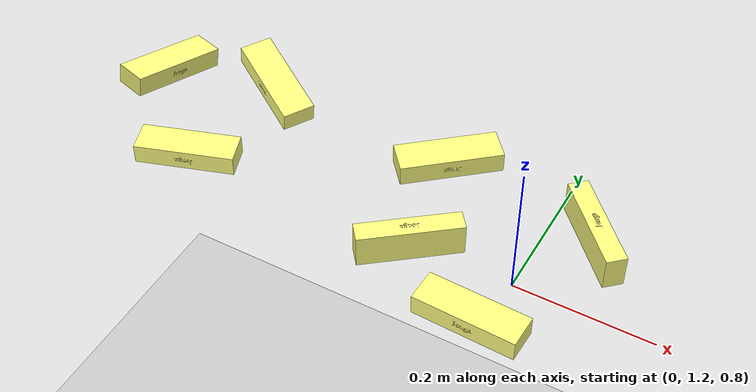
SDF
<sdf version="1.4">
 <world name="default">
  <include><uri>model://ground_plane</uri><pose>0 0 -0.005 0 0 0</pose></include>
  <include>
   <uri>model://jenga_block</uri>
   <name>jenga_block1</name>
   <pose>-0.024991 1.128376 0.784992 0 0 3.105351</pose>
  </include>
  <include>
   <uri>model://jenga_block</uri>
   <name>jenga_block2</name>
   <pose>0.070919 1.347065 0.804964 -1.570796 0 2.317278</pose>
  </include>
  <include>
   <uri>model://jenga_block</uri>
   <name>jenga_block3</name>
   <pose>-0.173732 1.354286 0.837371 3.141545 0 -2.437420</pose>
  </include>
  <include>
   <uri>model://jenga_block</uri>
   <name>jenga_block4</name>
   <pose>-0.165214 1.215589 0.804963 -1.570796 0 -2.472675</pose>
  </include>
  <include>
   <uri>model://jenga_block</uri>
   <name>jenga_block5</name>
   <pose>-0.646720 1.331895 0.801285 0.000001 0.173592 1.290266</pose>
  </include>
  <include>
   <uri>model://jenga_block</uri>
   <name>jenga_block6</name>
   <pose>-0.534968 1.220576 0.796855 -3.141591 -0.000002 0.323833</pose>
  </include>
  <include>
   <uri>model://jenga_block</uri>
   <name>jenga_block7</name>
   <pose>-0.480600 1.380870 0.801318 0.034228 0.171042 -0.554048</pose>
  </include>
  <light name="user_point_light_0" type="point">
   <pose>1.0 1.0 3.5 0 0 0</pose>
   <diffuse>0.7 0.7 0.7 1</diffuse>
   <specular>0.1 0.1 0.1 1</specular>
   <attenuation>
    <range>10</range>
    <constant>0.5</constant>
    <linear>0.01</linear>
    <quadratic>0.001</quadratic>
   </attenuation>
   <cast_shadows>0</cast_shadows>
   <direction>0 0 -1</direction>
  </light>
  <light name="user_point_light_1" type="point">
   <pose>-1.0 1.0 3.5 0 0 0</pose>
   <diffuse>0.7 0.7 0.7 1</diffuse>
   <specular>0.1 0.1 0.1 1</specular>
   <attenuation>
    <range>10</range>
    <constant>0.5</constant>
    <linear>0.01</linear>
    <quadratic>0.001</quadratic>
   </attenuation>
   <cast_shadows>0</cast_shadows>
   <direction>0 0 -1</direction>
  </light>
  <light name="user_point_light_2" type="point">
   <pose>-1.0 -1.0 3.5 0 0 0</pose>
   <diffuse>0.7 0.7 0.7 1</diffuse>
   <specular>0.1 0.1 0.1 1</specular>
   <attenuation>
    <range>10</range>
    <constant>0.5</constant>
    <linear>0.01</linear>
    <quadratic>0.001</quadratic>
   </attenuation>
   <cast_shadows>0</cast_shadows>
   <direction>0 0 -1</direction>
  </light>
  <light name="user_point_light_3" type="point">
   <pose>1.0 -1.0 3.5 0 0 0</pose>
   <diffuse>0.7 0.7 0.7 1</diffuse>
   <specular>0.1 0.1 0.1 1</specular>
   <attenuation>
    <range>10</range>
    <constant>0.5</constant>
    <linear>0.01</linear>
    <quadratic>0.001</quadratic>
   </attenuation>
   <cast_shadows>0</cast_shadows>
   <direction>0 0 -1</direction>
  </light>
 </world>
</sdf>

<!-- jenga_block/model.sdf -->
<sdf version='1.4'>
  <model name="jenga_block">
      <static>0</static>
      <link name='link'>
        <inertial>
          <!-- Weight = 0.185lb -> 0.083914588kg-->
          <mass>0.083914588</mass>
          <inertia>
            <ixx>0.00002454271</ixx>
            <ixy>0.000000</ixy>
            <ixz>0.000000</ixz>
            <iyy>0.0001689116</iyy>
            <iyz>0.000000</iyz>
            <izz>0.00018046111</izz>
          </inertia>
        </inertial>
        <collision name='collision'>
          <geometry>
            <mesh>
              <uri>model://jenga_block/meshes/jenga_block.stl</uri>
              <scale>0.001 0.001 0.001</scale>
            </mesh>
          </geometry>
          <surface>
            <friction>
              <ode>
                <mu>30.0</mu>
                <mu2>30.0</mu2>
              </ode>
            </friction>
          </surface>
        </collision>
        <visual name='visual'>
          <geometry>
            <mesh>
              <uri>model://jenga_block/meshes/jenga_block.dae</uri>
              <scale>0.001 0.001 0.001</scale>
            </mesh>
          </geometry>
          <material>
            <diffuse>1 1 0.5 1</diffuse>
          </material>
        </visual>
        <velocity_decay>
          <linear>0.000000</linear>
          <angular>0.000000</angular>
        </velocity_decay>
        <self_collide>0</self_collide>
        <kinematic>0</kinematic>
        <gravity>1</gravity>
      </link>
  </model>
</sdf>
